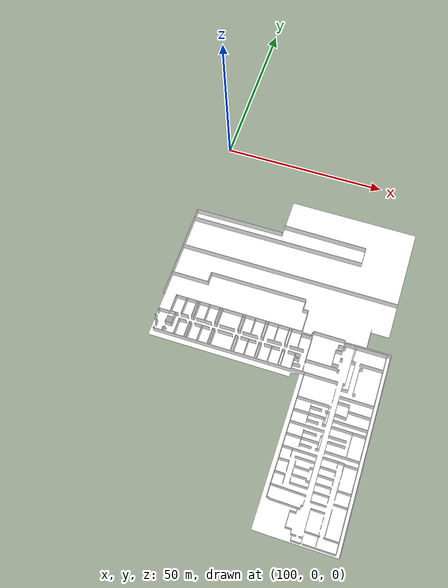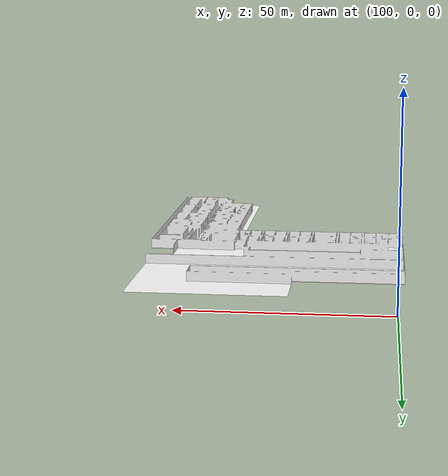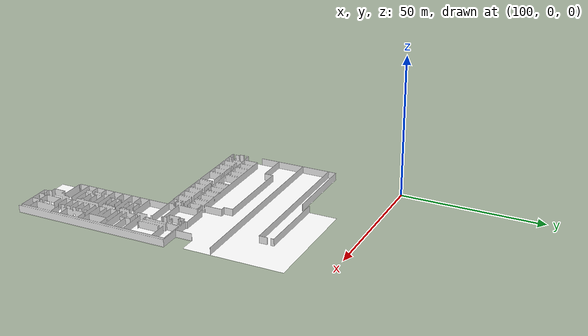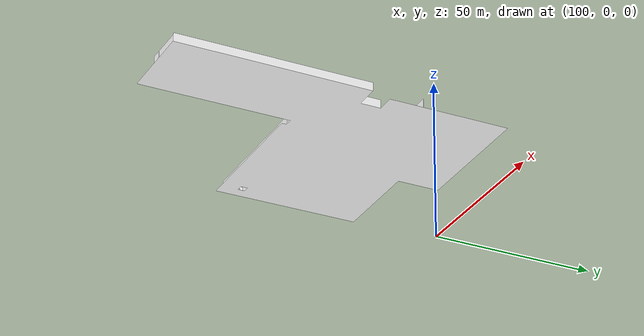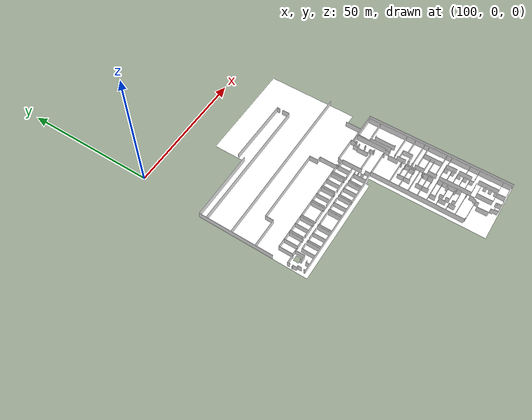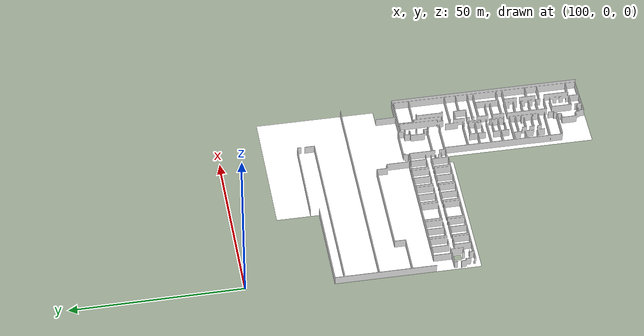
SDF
<?xml version='1.0' encoding='utf-8'?>
<sdf version="1.7">
  <model name="psychology_L3">
    <static>true</static>
    <link name="floor_1">
      <visual name="visual">
        <geometry>
          <mesh>
            <uri>model://psychology_L3/meshes/floor_1.obj</uri>
          </mesh>
        </geometry>
        <material>
          <diffuse>1.0 1.0 1.0</diffuse>
          <specular>0.1 0.1 0.1</specular>
          <pbr>
            <metal>
              <metalness>0.0</metalness>
              <albedo_map>model://psychology_L3/meshes/blue_linoleum.png</albedo_map>
            </metal>
          </pbr>
          <script>
            <uri>model://psychology_L3/meshes/</uri>
            <name>floor_1_Diffuse</name>
          </script>
        </material>
      </visual>
      <collision name="collision">
        <geometry>
          <mesh>
            <uri>model://psychology_L3/meshes/floor_1.obj</uri>
          </mesh>
        </geometry>
        <surface>
          <contact>
            <collide_bitmask>0x01</collide_bitmask>
          </contact>
        </surface>
      </collision>
    </link>
    <link name="wall_1">
      <visual name="wall_1">
        <geometry>
          <mesh>
            <uri>model://psychology_L3/meshes/wall_1.obj</uri>
          </mesh>
        </geometry>
        <transparency>0.0</transparency>
        <material>
          <diffuse>1.0 1.0 1.0</diffuse>
          <specular>0.1 0.1 0.1</specular>
          <pbr>
            <metal>
              <metalness>0.0</metalness>
              <albedo_map>model://psychology_L3/meshes/default.png</albedo_map>
            </metal>
          </pbr>
          <script>
            <uri>model://psychology_L3/meshes/</uri>
            <name>wall_1_Diffuse</name>
          </script>
        </material>
      </visual>
      <collision name="collision">
        <geometry>
          <mesh>
            <uri>model://psychology_L3/meshes/wall_1.obj</uri>
          </mesh>
        </geometry>
        <surface>
          <contact>
            <collide_bitmask>0x01</collide_bitmask>
          </contact>
        </surface>
      </collision>
      <pose>97.78663865332479 -109.40574553317201 0 0 0 0</pose>
    </link>
  </model>
</sdf>
